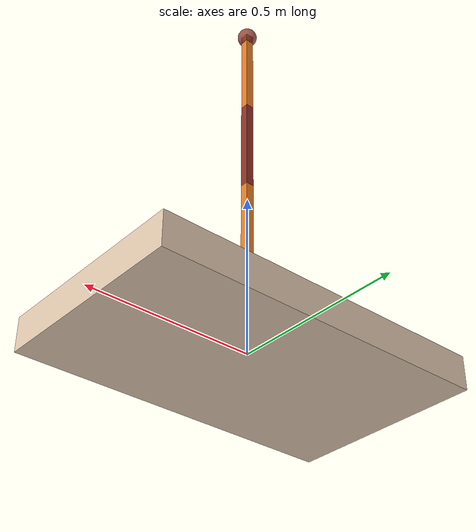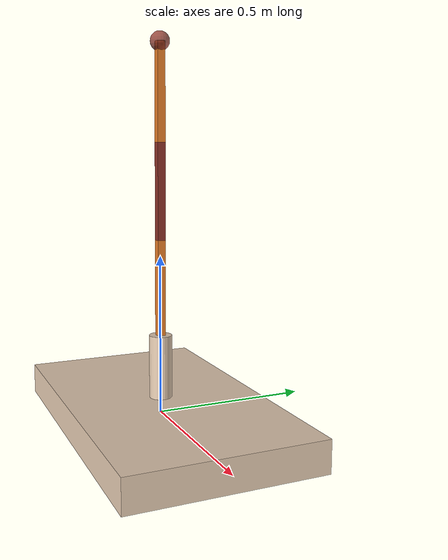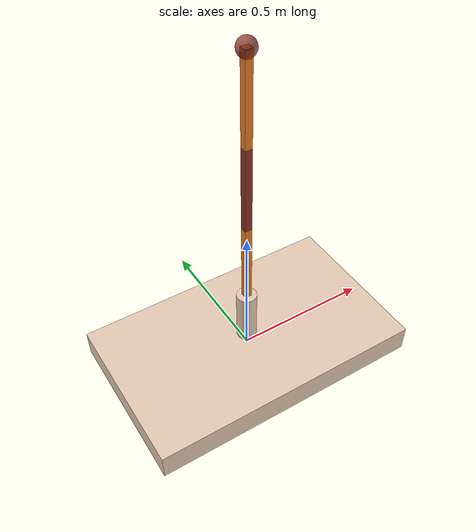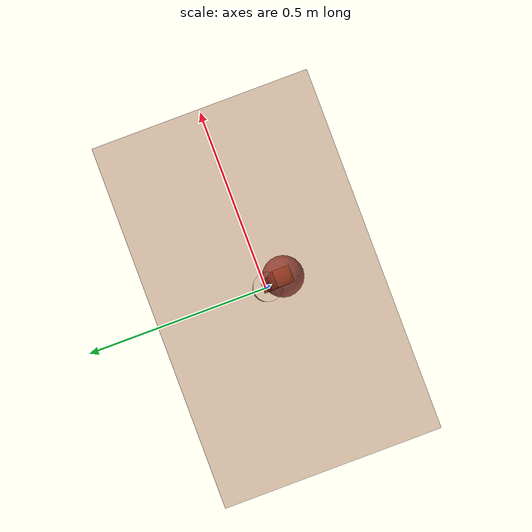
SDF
<?xml version="1.0"?>
<sdf version="1.7">
  <model name="RRRrobot">

    <link name="table_link">
    <visual name="visual">
        <geometry>
        <box>
          <size>1.0 0.6 0.1</size>
        </box>
        </geometry>
        <material>
          <diffuse>0.9 0.8 0.7 1.0</diffuse>
        </material>
    </visual>
    </link>

    <link name="cylinder_link">
      <pose relative_to="table_link">0 0 0.15 0 0 0</pose>
      <inertial>
        <mass>1.0</mass>
      </inertial>
      <visual name="visual">
        <geometry>
          <cylinder>
            <radius>0.036</radius>
            <length>0.2</length>
          </cylinder>
        </geometry>
        <material>
          <diffuse>0.9 0.8 0.7 1.0</diffuse>
        </material>
      </visual>
    </link>

    <link name="link1">
      <pose relative_to="cylinder_link">0 0 0.25 0 0 0</pose>
      <inertial>
        <mass>1.0</mass>
      </inertial>
      <visual name="visual">
          <geometry>
            <box>
              <size>0.025 0.025 0.3</size>
            </box>
          </geometry>
          <material>
            <diffuse>0.9141 0.5 0.1602 1</diffuse>
          </material>
      </visual>
      <collision name="collision">
        <geometry>
          <box>
            <size>0.025 0.025 0.3</size>
          </box>
          </geometry>
      </collision>
    </link>

    <link name="link2">
      <pose relative_to="link1">0 0 0.3 0 0 0</pose>
      <inertial>
        <mass>1.0</mass>
      </inertial>
      <visual name="visual">
          <geometry>
            <box>
              <size>0.025 0.025 0.3</size>
            </box>
          </geometry>
          <material>
            <diffuse>0.56 0.2 0.1602 1</diffuse>
          </material>
      </visual>
      <collision name="collision">
        <geometry>
          <box>
            <size>0.025 0.025 0.3</size>
          </box>
          </geometry>
      </collision>
    </link>

    <link name="link3">
      <pose relative_to="link2">0 0 0.3 0 0 0</pose>
      <inertial>
        <mass>1.0</mass>
      </inertial>
      <visual name="visual">
          <geometry>
            <box>
              <size>0.025 0.025 0.3</size>
            </box>
          </geometry>
          <material>
            <diffuse>0.9141 0.5 0.1602 1</diffuse>
          </material>
      </visual>
      <collision name="collision">
        <geometry>
          <box>
            <size>0.025 0.025 0.3</size>
          </box>
          </geometry>
      </collision>
    </link>

    <link name="end_effector">
      <pose relative_to="link3">0 0 0.15 0 0 0</pose>
      <visual name="visual">
          <geometry>
            <sphere> <radius>0.03</radius> </sphere>
          </geometry>
          <material>
            <diffuse>0.56 0.2 0.1602 0.8</diffuse>
          </material>
      </visual>
      <collision name="collision">
        <geometry>
            <sphere> <radius>0.03</radius> </sphere>
        </geometry>
      </collision>
    </link>

    <joint name="fix_table_cyliner_joint" type="fixed">
      <parent>table_link</parent>
      <child>cylinder_link</child>
    </joint>

    <joint name="joint1" type="revolute">
      <parent>cylinder_link</parent>
      <child>link1</child>
      <pose relative_to="cylinder_link">0 0 0.1 0 0 0</pose>
      <axis>
        <xyz>0 1 0</xyz>
      </axis>
    </joint>

    <joint name="joint2" type="revolute">
      <parent>link1</parent>
      <child>link2</child>
      <pose relative_to="link1">0 0 0.15 0 0 0</pose>
      <axis>
        <xyz>0 1 0</xyz>
      </axis>
    </joint>

    <joint name="joint3" type="revolute">
      <parent>link2</parent>
      <child>link3</child>
      <pose relative_to="link2">0 0 0.15 0 0 0</pose>
      <axis>
        <xyz>0 1 0</xyz>
      </axis>
    </joint>

    <joint name="end_effector_fixed_joint" type="fixed">
      <parent>link3</parent>
      <child>end_effector</child>
    </joint>

    <frame name="table_fixed_frame" attached_to="table_link">
    </frame>

    <frame name="end_effector_frame" attached_to="link3">
      <pose relative_to="link3">0 0 0.15 0 0 0</pose>
    </frame>

  </model>
</sdf>
